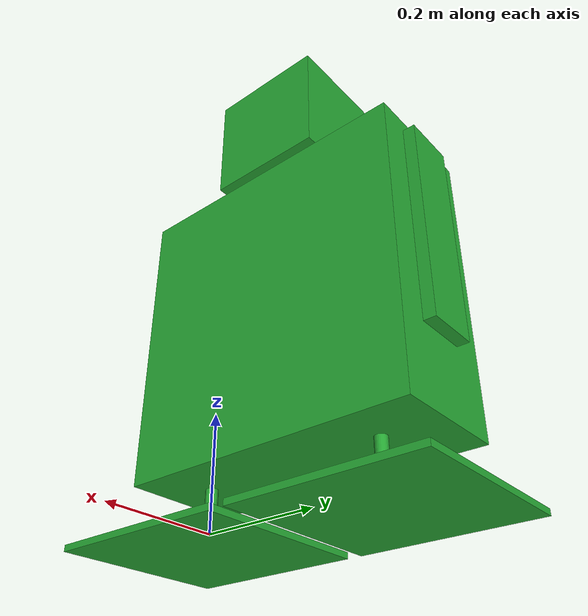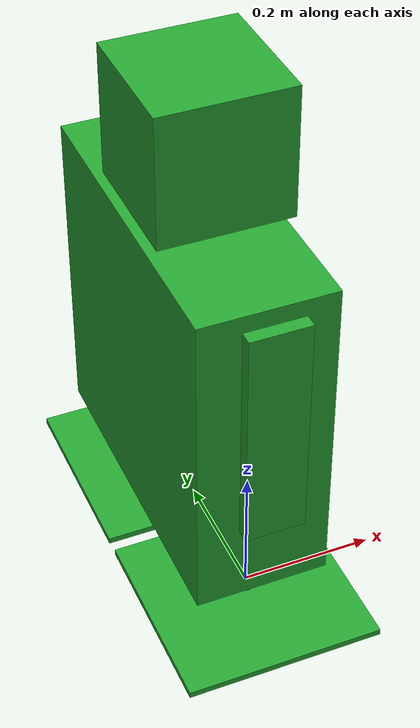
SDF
<?xml version='1.0'?>
<sdf version='1.6'>
  <model name='robot'>
    <link name='foot_1'>
      <pose frame=''>-0.002177 -0.002528 -0.025294 0 -0 0</pose>
      <inertial>
        <mass>1</mass>
        <inertia>
          <ixx>0.166667</ixx>
          <ixy>0</ixy>
          <ixz>0</ixz>
          <iyy>0.166667</iyy>
          <iyz>0</iyz>
          <izz>0.166667</izz>
        </inertia>
        <pose frame=''>0 0 0 0 -0 0</pose>
      </inertial>
      <self_collide>0</self_collide>
      <kinematic>0</kinematic>
      <gravity>1</gravity>
      <visual name='visual'>
        <pose frame=''>0 0 0 0 -0 0</pose>
        <geometry>
          <box>
            <size>0.3 0.3 0.01</size>
          </box>
        </geometry>
        <material>
          <lighting>1</lighting>
          <script>
            <uri>file://media/materials/scripts/gazebo.material</uri>
            <name>Gazebo/Green</name>
          </script>
        </material>
        <transparency>0</transparency>
        <cast_shadows>1</cast_shadows>
      </visual>
      <collision name='collision'>
        <laser_retro>0</laser_retro>
        <max_contacts>10</max_contacts>
        <pose frame=''>0 0 0 0 -0 0</pose>
        <geometry>
          <box>
            <size>0.3 0.3 0.01</size>
          </box>
        </geometry>
        <surface>
          <friction>
            <ode>
              <mu>1</mu>
              <mu2>1</mu2>
              <fdir1>0 0 0</fdir1>
              <slip1>0</slip1>
              <slip2>0</slip2>
            </ode>
            <torsional>
              <coefficient>1</coefficient>
              <patch_radius>0</patch_radius>
              <surface_radius>0</surface_radius>
              <use_patch_radius>1</use_patch_radius>
              <ode>
                <slip>0</slip>
              </ode>
            </torsional>
          </friction>
          <bounce>
            <restitution_coefficient>0</restitution_coefficient>
            <threshold>1e+06</threshold>
          </bounce>
          <contact>
            <collide_without_contact>0</collide_without_contact>
            <collide_without_contact_bitmask>1</collide_without_contact_bitmask>
            <collide_bitmask>1</collide_bitmask>
            <ode>
              <soft_cfm>0</soft_cfm>
              <soft_erp>0.2</soft_erp>
              <kp>1e+13</kp>
              <kd>1</kd>
              <max_vel>0.01</max_vel>
              <min_depth>0</min_depth>
            </ode>
            <bullet>
              <split_impulse>1</split_impulse>
              <split_impulse_penetration_threshold>-0.01</split_impulse_penetration_threshold>
              <soft_cfm>0</soft_cfm>
              <soft_erp>0.2</soft_erp>
              <kp>1e+13</kp>
              <kd>1</kd>
            </bullet>
          </contact>
        </surface>
      </collision>
    </link>
    <link name='arm_1'>
      <pose frame=''>-0.003122 -0.091998 0.37 -3e-06 -0 -2e-05</pose>
      <inertial>
        <mass>1</mass>
        <inertia>
          <ixx>0.166667</ixx>
          <ixy>0</ixy>
          <ixz>0</ixz>
          <iyy>0.166667</iyy>
          <iyz>0</iyz>
          <izz>0.166667</izz>
        </inertia>
        <pose frame=''>0 0 0 0 -0 0</pose>
      </inertial>
      <self_collide>0</self_collide>
      <kinematic>0</kinematic>
      <gravity>1</gravity>
      <visual name='visual'>
        <pose frame=''>0 0 0 0 -0 0</pose>
        <geometry>
          <box>
            <size>0.09 0.02 0.35</size>
          </box>
        </geometry>
        <material>
          <lighting>1</lighting>
          <script>
            <uri>file://media/materials/scripts/gazebo.material</uri>
            <name>Gazebo/Green</name>
          </script>
        </material>
        <transparency>0</transparency>
        <cast_shadows>1</cast_shadows>
      </visual>
      <collision name='collision'>
        <laser_retro>0</laser_retro>
        <max_contacts>10</max_contacts>
        <pose frame=''>0 0 0 0 -0 0</pose>
        <geometry>
          <box>
            <size>0.09 0.02 0.35</size>
          </box>
        </geometry>
        <surface>
          <friction>
            <ode>
              <mu>1</mu>
              <mu2>1</mu2>
              <fdir1>0 0 0</fdir1>
              <slip1>0</slip1>
              <slip2>0</slip2>
            </ode>
            <torsional>
              <coefficient>1</coefficient>
              <patch_radius>0</patch_radius>
              <surface_radius>0</surface_radius>
              <use_patch_radius>1</use_patch_radius>
              <ode>
                <slip>0</slip>
              </ode>
            </torsional>
          </friction>
          <bounce>
            <restitution_coefficient>0</restitution_coefficient>
            <threshold>1e+06</threshold>
          </bounce>
          <contact>
            <collide_without_contact>0</collide_without_contact>
            <collide_without_contact_bitmask>1</collide_without_contact_bitmask>
            <collide_bitmask>1</collide_bitmask>
            <ode>
              <soft_cfm>0</soft_cfm>
              <soft_erp>0.2</soft_erp>
              <kp>1e+13</kp>
              <kd>1</kd>
              <max_vel>0.01</max_vel>
              <min_depth>0</min_depth>
            </ode>
            <bullet>
              <split_impulse>1</split_impulse>
              <split_impulse_penetration_threshold>-0.01</split_impulse_penetration_threshold>
              <soft_cfm>0</soft_cfm>
              <soft_erp>0.2</soft_erp>
              <kp>1e+13</kp>
              <kd>1</kd>
            </bullet>
          </contact>
        </surface>
      </collision>
    </link>
    <link name='arm_2'>
      <pose frame=''>-0.003122 0.431998 0.37 -6e-06 -0 -4e-05</pose>
      <inertial>
        <mass>1</mass>
        <inertia>
          <ixx>0.166667</ixx>
          <ixy>0</ixy>
          <ixz>0</ixz>
          <iyy>0.166667</iyy>
          <iyz>0</iyz>
          <izz>0.166667</izz>
        </inertia>
        <pose frame=''>0 0 0 0 -0 0</pose>
      </inertial>
      <self_collide>0</self_collide>
      <kinematic>0</kinematic>
      <gravity>1</gravity>
      <visual name='visual'>
        <pose frame=''>0 0 0 0 -0 0</pose>
        <geometry>
          <box>
            <size>0.09 0.02 0.35</size>
          </box>
        </geometry>
        <material>
          <lighting>1</lighting>
          <script>
            <uri>file://media/materials/scripts/gazebo.material</uri>
            <name>Gazebo/Green</name>
          </script>
        </material>
        <transparency>0</transparency>
        <cast_shadows>1</cast_shadows>
      </visual>
      <collision name='collision'>
        <laser_retro>0</laser_retro>
        <max_contacts>10</max_contacts>
        <pose frame=''>0 0 0 0 -0 0</pose>
        <geometry>
          <box>
            <size>0.09 0.02 0.35</size>
          </box>
        </geometry>
        <surface>
          <friction>
            <ode>
              <mu>1</mu>
              <mu2>1</mu2>
              <fdir1>0 0 0</fdir1>
              <slip1>0</slip1>
              <slip2>0</slip2>
            </ode>
            <torsional>
              <coefficient>1</coefficient>
              <patch_radius>0</patch_radius>
              <surface_radius>0</surface_radius>
              <use_patch_radius>1</use_patch_radius>
              <ode>
                <slip>0</slip>
              </ode>
            </torsional>
          </friction>
          <bounce>
            <restitution_coefficient>0</restitution_coefficient>
            <threshold>1e+06</threshold>
          </bounce>
          <contact>
            <collide_without_contact>0</collide_without_contact>
            <collide_without_contact_bitmask>1</collide_without_contact_bitmask>
            <collide_bitmask>1</collide_bitmask>
            <ode>
              <soft_cfm>0</soft_cfm>
              <soft_erp>0.2</soft_erp>
              <kp>1e+13</kp>
              <kd>1</kd>
              <max_vel>0.01</max_vel>
              <min_depth>0</min_depth>
            </ode>
            <bullet>
              <split_impulse>1</split_impulse>
              <split_impulse_penetration_threshold>-0.01</split_impulse_penetration_threshold>
              <soft_cfm>0</soft_cfm>
              <soft_erp>0.2</soft_erp>
              <kp>1e+13</kp>
              <kd>1</kd>
            </bullet>
          </contact>
        </surface>
      </collision>
    </link>
    <link name='body'>
      <pose frame=''>-0.009988 0.170319 0.318893 0 -0 0</pose>
      <inertial>
        <mass>1</mass>
        <inertia>
          <ixx>0.166667</ixx>
          <ixy>0</ixy>
          <ixz>0</ixz>
          <iyy>0.166667</iyy>
          <iyz>0</iyz>
          <izz>0.166667</izz>
        </inertia>
        <pose frame=''>0 0 0 0 -0 0</pose>
      </inertial>
      <self_collide>0</self_collide>
      <kinematic>0</kinematic>
      <gravity>1</gravity>
      <visual name='visual'>
        <pose frame=''>0 0 0 0 -0 0</pose>
        <geometry>
          <box>
            <size>0.2 0.5 0.5</size>
          </box>
        </geometry>
        <material>
          <lighting>1</lighting>
          <script>
            <uri>file://media/materials/scripts/gazebo.material</uri>
            <name>Gazebo/Green</name>
          </script>
        </material>
        <transparency>0</transparency>
        <cast_shadows>1</cast_shadows>
      </visual>
      <collision name='collision'>
        <laser_retro>0</laser_retro>
        <max_contacts>10</max_contacts>
        <pose frame=''>0 0 0 0 -0 0</pose>
        <geometry>
          <box>
            <size>0.2 0.5 0.5</size>
          </box>
        </geometry>
        <surface>
          <friction>
            <ode>
              <mu>1</mu>
              <mu2>1</mu2>
              <fdir1>0 0 0</fdir1>
              <slip1>0</slip1>
              <slip2>0</slip2>
            </ode>
            <torsional>
              <coefficient>1</coefficient>
              <patch_radius>0</patch_radius>
              <surface_radius>0</surface_radius>
              <use_patch_radius>1</use_patch_radius>
              <ode>
                <slip>0</slip>
              </ode>
            </torsional>
          </friction>
          <bounce>
            <restitution_coefficient>0</restitution_coefficient>
            <threshold>1e+06</threshold>
          </bounce>
          <contact>
            <collide_without_contact>0</collide_without_contact>
            <collide_without_contact_bitmask>1</collide_without_contact_bitmask>
            <collide_bitmask>1</collide_bitmask>
            <ode>
              <soft_cfm>0</soft_cfm>
              <soft_erp>0.2</soft_erp>
              <kp>1e+13</kp>
              <kd>1</kd>
              <max_vel>0.01</max_vel>
              <min_depth>0</min_depth>
            </ode>
            <bullet>
              <split_impulse>1</split_impulse>
              <split_impulse_penetration_threshold>-0.01</split_impulse_penetration_threshold>
              <soft_cfm>0</soft_cfm>
              <soft_erp>0.2</soft_erp>
              <kp>1e+13</kp>
              <kd>1</kd>
            </bullet>
          </contact>
        </surface>
      </collision>
    </link>
    <link name='foot_2'>
      <pose frame=''>-0.002177 0.32249 -0.025294 0 -0 0</pose>
      <inertial>
        <mass>1</mass>
        <inertia>
          <ixx>0.166667</ixx>
          <ixy>0</ixy>
          <ixz>0</ixz>
          <iyy>0.166667</iyy>
          <iyz>0</iyz>
          <izz>0.166667</izz>
        </inertia>
        <pose frame=''>0 0 0 0 -0 0</pose>
      </inertial>
      <self_collide>0</self_collide>
      <kinematic>0</kinematic>
      <gravity>1</gravity>
      <visual name='visual'>
        <pose frame=''>0 0 0 0 -0 0</pose>
        <geometry>
          <box>
            <size>0.3 0.3 0.01</size>
          </box>
        </geometry>
        <material>
          <lighting>1</lighting>
          <script>
            <uri>file://media/materials/scripts/gazebo.material</uri>
            <name>Gazebo/Green</name>
          </script>
        </material>
        <transparency>0</transparency>
        <cast_shadows>1</cast_shadows>
      </visual>
      <collision name='collision'>
        <laser_retro>0</laser_retro>
        <max_contacts>10</max_contacts>
        <pose frame=''>0 0 0 0 -0 0</pose>
        <geometry>
          <box>
            <size>0.3 0.3 0.01</size>
          </box>
        </geometry>
        <surface>
          <friction>
            <ode>
              <mu>1</mu>
              <mu2>1</mu2>
              <fdir1>0 0 0</fdir1>
              <slip1>0</slip1>
              <slip2>0</slip2>
            </ode>
            <torsional>
              <coefficient>1</coefficient>
              <patch_radius>0</patch_radius>
              <surface_radius>0</surface_radius>
              <use_patch_radius>1</use_patch_radius>
              <ode>
                <slip>0</slip>
              </ode>
            </torsional>
          </friction>
          <bounce>
            <restitution_coefficient>0</restitution_coefficient>
            <threshold>1e+06</threshold>
          </bounce>
          <contact>
            <collide_without_contact>0</collide_without_contact>
            <collide_without_contact_bitmask>1</collide_without_contact_bitmask>
            <collide_bitmask>1</collide_bitmask>
            <ode>
              <soft_cfm>0</soft_cfm>
              <soft_erp>0.2</soft_erp>
              <kp>1e+13</kp>
              <kd>1</kd>
              <max_vel>0.01</max_vel>
              <min_depth>0</min_depth>
            </ode>
            <bullet>
              <split_impulse>1</split_impulse>
              <split_impulse_penetration_threshold>-0.01</split_impulse_penetration_threshold>
              <soft_cfm>0</soft_cfm>
              <soft_erp>0.2</soft_erp>
              <kp>1e+13</kp>
              <kd>1</kd>
            </bullet>
          </contact>
        </surface>
      </collision>
    </link>
    <link name='head'>
      <pose frame=''>0.003947 0.184567 0.671241 0 -0 1e-06</pose>
      <inertial>
        <mass>1</mass>
        <inertia>
          <ixx>0.166667</ixx>
          <ixy>0</ixy>
          <ixz>0</ixz>
          <iyy>0.166667</iyy>
          <iyz>0</iyz>
          <izz>0.166667</izz>
        </inertia>
        <pose frame=''>0 0 0 0 -0 0</pose>
      </inertial>
      <self_collide>0</self_collide>
      <kinematic>0</kinematic>
      <gravity>1</gravity>
      <visual name='visual'>
        <pose frame=''>0 0 0 0 -0 0</pose>
        <geometry>
          <box>
            <size>0.2 0.2 0.2</size>
          </box>
        </geometry>
        <material>
          <lighting>1</lighting>
          <script>
            <uri>file://media/materials/scripts/gazebo.material</uri>
            <name>Gazebo/Green</name>
          </script>
        </material>
        <transparency>0</transparency>
        <cast_shadows>1</cast_shadows>
      </visual>
      <collision name='collision'>
        <laser_retro>0</laser_retro>
        <max_contacts>10</max_contacts>
        <pose frame=''>0 0 0 0 -0 0</pose>
        <geometry>
          <box>
            <size>0.2 0.2 0.2</size>
          </box>
        </geometry>
        <surface>
          <friction>
            <ode>
              <mu>1</mu>
              <mu2>1</mu2>
              <fdir1>0 0 0</fdir1>
              <slip1>0</slip1>
              <slip2>0</slip2>
            </ode>
            <torsional>
              <coefficient>1</coefficient>
              <patch_radius>0</patch_radius>
              <surface_radius>0</surface_radius>
              <use_patch_radius>1</use_patch_radius>
              <ode>
                <slip>0</slip>
              </ode>
            </torsional>
          </friction>
          <bounce>
            <restitution_coefficient>0</restitution_coefficient>
            <threshold>1e+06</threshold>
          </bounce>
          <contact>
            <collide_without_contact>0</collide_without_contact>
            <collide_without_contact_bitmask>1</collide_without_contact_bitmask>
            <collide_bitmask>1</collide_bitmask>
            <ode>
              <soft_cfm>0</soft_cfm>
              <soft_erp>0.2</soft_erp>
              <kp>1e+13</kp>
              <kd>1</kd>
              <max_vel>0.01</max_vel>
              <min_depth>0</min_depth>
            </ode>
            <bullet>
              <split_impulse>1</split_impulse>
              <split_impulse_penetration_threshold>-0.01</split_impulse_penetration_threshold>
              <soft_cfm>0</soft_cfm>
              <soft_erp>0.2</soft_erp>
              <kp>1e+13</kp>
              <kd>1</kd>
            </bullet>
          </contact>
        </surface>
      </collision>
    </link>
    <link name='leg_1'>
      <pose frame=''>0.002177 0.002528 0.025294 0 -0 0</pose>
      <inertial>
        <mass>1</mass>
        <inertia>
          <ixx>0.145833</ixx>
          <ixy>0</ixy>
          <ixz>0</ixz>
          <iyy>0.145833</iyy>
          <iyz>0</iyz>
          <izz>0.125</izz>
        </inertia>
        <pose frame=''>0 0 0 0 -0 0</pose>
      </inertial>
      <self_collide>0</self_collide>
      <kinematic>0</kinematic>
      <gravity>1</gravity>
      <visual name='visual'>
        <pose frame=''>0 0 0 0 -0 0</pose>
        <geometry>
          <cylinder>
            <radius>0.01</radius>
            <length>0.1</length>
          </cylinder>
        </geometry>
        <material>
          <lighting>1</lighting>
          <script>
            <uri>file://media/materials/scripts/gazebo.material</uri>
            <name>Gazebo/Green</name>
          </script>
        </material>
        <transparency>0</transparency>
        <cast_shadows>1</cast_shadows>
      </visual>
      <collision name='collision'>
        <laser_retro>0</laser_retro>
        <max_contacts>10</max_contacts>
        <pose frame=''>0 0 0 0 -0 0</pose>
        <geometry>
          <cylinder>
            <radius>0.01</radius>
            <length>0.1</length>
          </cylinder>
        </geometry>
        <surface>
          <friction>
            <ode>
              <mu>1</mu>
              <mu2>1</mu2>
              <fdir1>0 0 0</fdir1>
              <slip1>0</slip1>
              <slip2>0</slip2>
            </ode>
            <torsional>
              <coefficient>1</coefficient>
              <patch_radius>0</patch_radius>
              <surface_radius>0</surface_radius>
              <use_patch_radius>1</use_patch_radius>
              <ode>
                <slip>0</slip>
              </ode>
            </torsional>
          </friction>
          <bounce>
            <restitution_coefficient>0</restitution_coefficient>
            <threshold>1e+06</threshold>
          </bounce>
          <contact>
            <collide_without_contact>0</collide_without_contact>
            <collide_without_contact_bitmask>1</collide_without_contact_bitmask>
            <collide_bitmask>1</collide_bitmask>
            <ode>
              <soft_cfm>0</soft_cfm>
              <soft_erp>0.2</soft_erp>
              <kp>1e+13</kp>
              <kd>1</kd>
              <max_vel>0.01</max_vel>
              <min_depth>0</min_depth>
            </ode>
            <bullet>
              <split_impulse>1</split_impulse>
              <split_impulse_penetration_threshold>-0.01</split_impulse_penetration_threshold>
              <soft_cfm>0</soft_cfm>
              <soft_erp>0.2</soft_erp>
              <kp>1e+13</kp>
              <kd>1</kd>
            </bullet>
          </contact>
        </surface>
      </collision>
    </link>
    <link name='leg_2'>
      <pose frame=''>0.00771 0.322829 0.025294 0 -0 0</pose>
      <inertial>
        <mass>1</mass>
        <inertia>
          <ixx>0.145833</ixx>
          <ixy>0</ixy>
          <ixz>0</ixz>
          <iyy>0.145833</iyy>
          <iyz>0</iyz>
          <izz>0.125</izz>
        </inertia>
        <pose frame=''>0 0 0 0 -0 0</pose>
      </inertial>
      <self_collide>0</self_collide>
      <kinematic>0</kinematic>
      <gravity>1</gravity>
      <visual name='visual'>
        <pose frame=''>0 0 0 0 -0 0</pose>
        <geometry>
          <cylinder>
            <radius>0.01</radius>
            <length>0.1</length>
          </cylinder>
        </geometry>
        <material>
          <lighting>1</lighting>
          <script>
            <uri>file://media/materials/scripts/gazebo.material</uri>
            <name>Gazebo/Green</name>
          </script>
        </material>
        <transparency>0</transparency>
        <cast_shadows>1</cast_shadows>
      </visual>
      <collision name='collision'>
        <laser_retro>0</laser_retro>
        <max_contacts>10</max_contacts>
        <pose frame=''>0 0 0 0 -0 0</pose>
        <geometry>
          <cylinder>
            <radius>0.01</radius>
            <length>0.1</length>
          </cylinder>
        </geometry>
        <surface>
          <friction>
            <ode>
              <mu>1</mu>
              <mu2>1</mu2>
              <fdir1>0 0 0</fdir1>
              <slip1>0</slip1>
              <slip2>0</slip2>
            </ode>
            <torsional>
              <coefficient>1</coefficient>
              <patch_radius>0</patch_radius>
              <surface_radius>0</surface_radius>
              <use_patch_radius>1</use_patch_radius>
              <ode>
                <slip>0</slip>
              </ode>
            </torsional>
          </friction>
          <bounce>
            <restitution_coefficient>0</restitution_coefficient>
            <threshold>1e+06</threshold>
          </bounce>
          <contact>
            <collide_without_contact>0</collide_without_contact>
            <collide_without_contact_bitmask>1</collide_without_contact_bitmask>
            <collide_bitmask>1</collide_bitmask>
            <ode>
              <soft_cfm>0</soft_cfm>
              <soft_erp>0.2</soft_erp>
              <kp>1e+13</kp>
              <kd>1</kd>
              <max_vel>0.01</max_vel>
              <min_depth>0</min_depth>
            </ode>
            <bullet>
              <split_impulse>1</split_impulse>
              <split_impulse_penetration_threshold>-0.01</split_impulse_penetration_threshold>
              <soft_cfm>0</soft_cfm>
              <soft_erp>0.2</soft_erp>
              <kp>1e+13</kp>
              <kd>1</kd>
            </bullet>
          </contact>
        </surface>
      </collision>
    </link>
    <joint name='body_arm_1' type='revolute'>
      <parent>body</parent>
      <child>arm_1</child>
      <pose frame=''>0 0 0 0 -0 0</pose>
      <axis>
        <xyz>1 0 0</xyz>
        <use_parent_model_frame>0</use_parent_model_frame>
        <limit>
          <lower>-1.79769e+308</lower>
          <upper>1.79769e+308</upper>
          <effort>-1</effort>
          <velocity>-1</velocity>
        </limit>
        <dynamics>
          <spring_reference>0</spring_reference>
          <spring_stiffness>0</spring_stiffness>
          <damping>0</damping>
          <friction>0</friction>
        </dynamics>
      </axis>
      <physics>
        <ode>
          <limit>
            <cfm>0</cfm>
            <erp>0.2</erp>
          </limit>
          <suspension>
            <cfm>0</cfm>
            <erp>0.2</erp>
          </suspension>
        </ode>
      </physics>
    </joint>
    <joint name='body_arm_2' type='revolute'>
      <parent>body</parent>
      <child>arm_2</child>
      <pose frame=''>0 0 0 0 -0 0</pose>
      <axis>
        <xyz>1 0 0</xyz>
        <use_parent_model_frame>0</use_parent_model_frame>
        <limit>
          <lower>-1.79769e+308</lower>
          <upper>1.79769e+308</upper>
          <effort>-1</effort>
          <velocity>-1</velocity>
        </limit>
        <dynamics>
          <spring_reference>0</spring_reference>
          <spring_stiffness>0</spring_stiffness>
          <damping>0</damping>
          <friction>0</friction>
        </dynamics>
      </axis>
      <physics>
        <ode>
          <limit>
            <cfm>0</cfm>
            <erp>0.2</erp>
          </limit>
          <suspension>
            <cfm>0</cfm>
            <erp>0.2</erp>
          </suspension>
        </ode>
      </physics>
    </joint>
    <joint name='body_head' type='revolute'>
      <parent>body</parent>
      <child>head</child>
      <pose frame=''>0 0 0 0 -0 0</pose>
      <axis>
        <xyz>1 0 0</xyz>
        <use_parent_model_frame>0</use_parent_model_frame>
        <limit>
          <lower>-1.79769e+308</lower>
          <upper>1.79769e+308</upper>
          <effort>-1</effort>
          <velocity>-1</velocity>
        </limit>
        <dynamics>
          <spring_reference>0</spring_reference>
          <spring_stiffness>0</spring_stiffness>
          <damping>0</damping>
          <friction>0</friction>
        </dynamics>
      </axis>
      <physics>
        <ode>
          <limit>
            <cfm>0</cfm>
            <erp>0.2</erp>
          </limit>
          <suspension>
            <cfm>0</cfm>
            <erp>0.2</erp>
          </suspension>
        </ode>
      </physics>
    </joint>
    <joint name='body_leg1' type='revolute'>
      <parent>body</parent>
      <child>leg_1</child>
      <pose frame=''>0 0 0 0 -0 0</pose>
      <axis>
        <xyz>1 0 0</xyz>
        <use_parent_model_frame>0</use_parent_model_frame>
        <limit>
          <lower>-1.79769e+308</lower>
          <upper>1.79769e+308</upper>
          <effort>-1</effort>
          <velocity>-1</velocity>
        </limit>
        <dynamics>
          <spring_reference>0</spring_reference>
          <spring_stiffness>0</spring_stiffness>
          <damping>0</damping>
          <friction>0</friction>
        </dynamics>
      </axis>
      <physics>
        <ode>
          <limit>
            <cfm>0</cfm>
            <erp>0.2</erp>
          </limit>
          <suspension>
            <cfm>0</cfm>
            <erp>0.2</erp>
          </suspension>
        </ode>
      </physics>
    </joint>
    <joint name='body_leg2' type='revolute'>
      <parent>body</parent>
      <child>leg_2</child>
      <pose frame=''>0 0 0 0 -0 0</pose>
      <axis>
        <xyz>1 0 0</xyz>
        <use_parent_model_frame>0</use_parent_model_frame>
        <limit>
          <lower>-1.79769e+308</lower>
          <upper>1.79769e+308</upper>
          <effort>-1</effort>
          <velocity>-1</velocity>
        </limit>
        <dynamics>
          <spring_reference>0</spring_reference>
          <spring_stiffness>0</spring_stiffness>
          <damping>0</damping>
          <friction>0</friction>
        </dynamics>
      </axis>
      <physics>
        <ode>
          <limit>
            <cfm>0</cfm>
            <erp>0.2</erp>
          </limit>
          <suspension>
            <cfm>0</cfm>
            <erp>0.2</erp>
          </suspension>
        </ode>
      </physics>
    </joint>
    <joint name='foot_leg_1' type='fixed'>
      <parent>foot_1</parent>
      <child>leg_1</child>
      <pose frame=''>0 0 0 -0.09 0 0</pose>
      <physics>
        <ode>
          <limit>
            <cfm>0</cfm>
            <erp>0.2</erp>
          </limit>
          <suspension>
            <cfm>0</cfm>
            <erp>0.2</erp>
          </suspension>
        </ode>
      </physics>
    </joint>
    <joint name='foot_leg_2' type='fixed'>
      <parent>foot_2</parent>
      <child>leg_2</child>
      <pose frame=''>0 0 0 0 -0 0</pose>
      <physics>
        <ode>
          <limit>
            <cfm>0</cfm>
            <erp>0.2</erp>
          </limit>
          <suspension>
            <cfm>0</cfm>
            <erp>0.2</erp>
          </suspension>
        </ode>
      </physics>
    </joint>
    <static>0</static>
    <allow_auto_disable>1</allow_auto_disable>
  </model>
</sdf>
